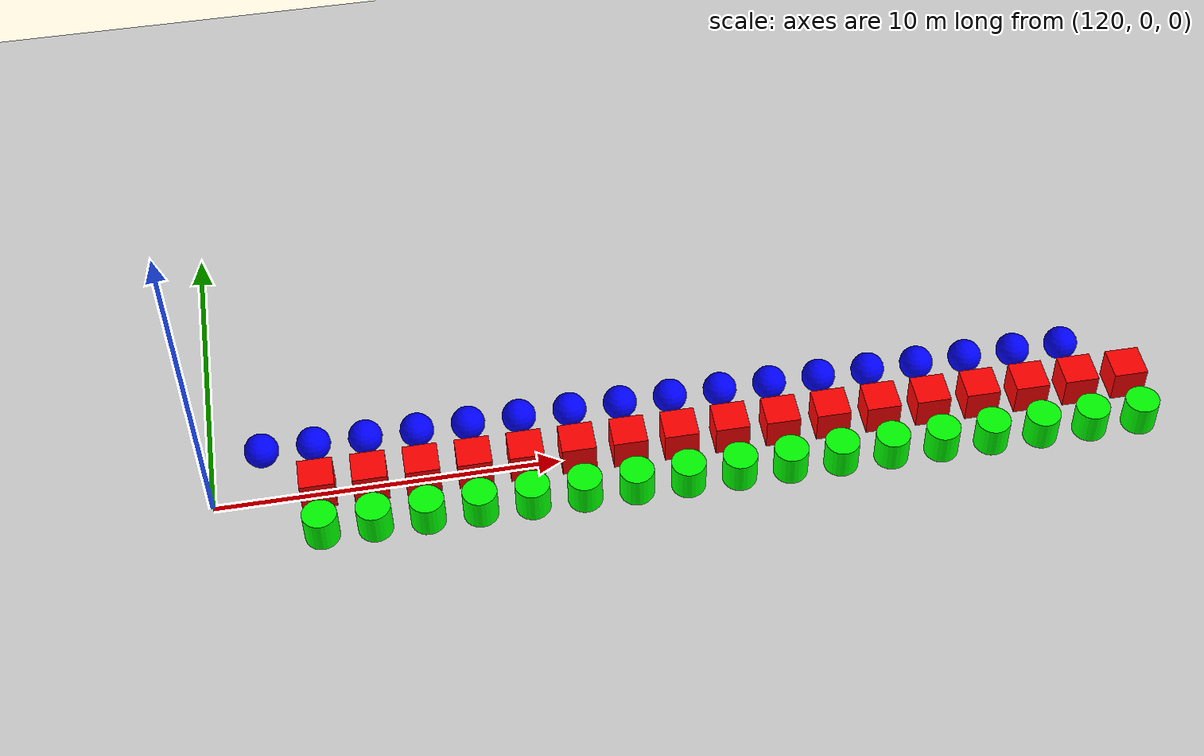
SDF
<sdf version="1.6">
 <world name="shapes">
  <model name="ground_plane">
   <static>true</static>
   <link name="link">
    <collision name="collision">
     <geometry><plane><normal>0 0 1</normal><size>100 100</size></plane></geometry>
    </collision>
    <visual name="visual">
     <geometry><plane><normal>0 0 1</normal><size>100 100</size></plane></geometry>
     <material>
      <ambient>0.8 0.8 0.8 1</ambient>
      <diffuse>0.8 0.8 0.8 1</diffuse>
      <specular>0.8 0.8 0.8 1</specular>
     </material>
    </visual>
   </link>
  </model>
  <model name="sphere_581">
   <static>true</static>
   <pose>121.5 1.5 0.5 0 0 0</pose>
   <link name="sphere_link">
    <inertial>
     <inertia><ixx>3</ixx><ixy>0</ixy><ixz>0</ixz><iyy>3</iyy><iyz>0</iyz><izz>3</izz></inertia>
     <mass>3.0</mass>
    </inertial>
    <collision name="sphere_collision"><geometry><sphere><radius>0.5</radius></sphere></geometry></collision>
    <visual name="sphere_visual">
     <geometry><sphere><radius>0.5</radius></sphere></geometry>
     <material><ambient>0 0 1 1</ambient><diffuse>0 0 1 1</diffuse><specular>0 0 1 1</specular></material>
    </visual>
   </link>
  </model>
  <model name="box_582">
   <static>true</static>
   <pose>123.0 0 0.5 0 0 0</pose>
   <link name="box_link">
    <inertial>
     <inertia><ixx>1</ixx><ixy>0</ixy><ixz>0</ixz><iyy>1</iyy><iyz>0</iyz><izz>1</izz></inertia>
     <mass>1.0</mass>
    </inertial>
    <collision name="box_collision"><geometry><box><size>1 1 1</size></box></geometry></collision>
    <visual name="box_visual">
     <geometry><box><size>1 1 1</size></box></geometry>
     <material><ambient>1 0 0 1</ambient><diffuse>1 0 0 1</diffuse><specular>1 0 0 1</specular></material>
    </visual>
   </link>
  </model>
  <model name="cylinder_582">
   <static>true</static>
   <pose>123.0 -1.5 0.5 0 0 0</pose>
   <link name="cylinder_link">
    <inertial>
     <inertia><ixx>2</ixx><ixy>0</ixy><ixz>0</ixz><iyy>2</iyy><iyz>0</iyz><izz>2</izz></inertia>
     <mass>2.0</mass>
    </inertial>
    <collision name="cylinder_collision">
     <geometry><cylinder><radius>0.5</radius><length>1.0</length></cylinder></geometry>
    </collision>
    <visual name="cylinder_visual">
     <geometry><cylinder><radius>0.5</radius><length>1.0</length></cylinder></geometry>
     <material><ambient>0 1 0 1</ambient><diffuse>0 1 0 1</diffuse><specular>0 1 0 1</specular></material>
    </visual>
   </link>
  </model>
  <model name="sphere_582">
   <static>true</static>
   <pose>123.0 1.5 0.5 0 0 0</pose>
   <link name="sphere_link">
    <inertial>
     <inertia><ixx>3</ixx><ixy>0</ixy><ixz>0</ixz><iyy>3</iyy><iyz>0</iyz><izz>3</izz></inertia>
     <mass>3.0</mass>
    </inertial>
    <collision name="sphere_collision"><geometry><sphere><radius>0.5</radius></sphere></geometry></collision>
    <visual name="sphere_visual">
     <geometry><sphere><radius>0.5</radius></sphere></geometry>
     <material><ambient>0 0 1 1</ambient><diffuse>0 0 1 1</diffuse><specular>0 0 1 1</specular></material>
    </visual>
   </link>
  </model>
  <model name="box_583">
   <static>true</static>
   <pose>124.5 0 0.5 0 0 0</pose>
   <link name="box_link">
    <inertial>
     <inertia><ixx>1</ixx><ixy>0</ixy><ixz>0</ixz><iyy>1</iyy><iyz>0</iyz><izz>1</izz></inertia>
     <mass>1.0</mass>
    </inertial>
    <collision name="box_collision"><geometry><box><size>1 1 1</size></box></geometry></collision>
    <visual name="box_visual">
     <geometry><box><size>1 1 1</size></box></geometry>
     <material><ambient>1 0 0 1</ambient><diffuse>1 0 0 1</diffuse><specular>1 0 0 1</specular></material>
    </visual>
   </link>
  </model>
  <model name="cylinder_583">
   <static>true</static>
   <pose>124.5 -1.5 0.5 0 0 0</pose>
   <link name="cylinder_link">
    <inertial>
     <inertia><ixx>2</ixx><ixy>0</ixy><ixz>0</ixz><iyy>2</iyy><iyz>0</iyz><izz>2</izz></inertia>
     <mass>2.0</mass>
    </inertial>
    <collision name="cylinder_collision">
     <geometry><cylinder><radius>0.5</radius><length>1.0</length></cylinder></geometry>
    </collision>
    <visual name="cylinder_visual">
     <geometry><cylinder><radius>0.5</radius><length>1.0</length></cylinder></geometry>
     <material><ambient>0 1 0 1</ambient><diffuse>0 1 0 1</diffuse><specular>0 1 0 1</specular></material>
    </visual>
   </link>
  </model>
  <model name="sphere_583">
   <static>true</static>
   <pose>124.5 1.5 0.5 0 0 0</pose>
   <link name="sphere_link">
    <inertial>
     <inertia><ixx>3</ixx><ixy>0</ixy><ixz>0</ixz><iyy>3</iyy><iyz>0</iyz><izz>3</izz></inertia>
     <mass>3.0</mass>
    </inertial>
    <collision name="sphere_collision"><geometry><sphere><radius>0.5</radius></sphere></geometry></collision>
    <visual name="sphere_visual">
     <geometry><sphere><radius>0.5</radius></sphere></geometry>
     <material><ambient>0 0 1 1</ambient><diffuse>0 0 1 1</diffuse><specular>0 0 1 1</specular></material>
    </visual>
   </link>
  </model>
  <model name="box_584">
   <static>true</static>
   <pose>126.0 0 0.5 0 0 0</pose>
   <link name="box_link">
    <inertial>
     <inertia><ixx>1</ixx><ixy>0</ixy><ixz>0</ixz><iyy>1</iyy><iyz>0</iyz><izz>1</izz></inertia>
     <mass>1.0</mass>
    </inertial>
    <collision name="box_collision"><geometry><box><size>1 1 1</size></box></geometry></collision>
    <visual name="box_visual">
     <geometry><box><size>1 1 1</size></box></geometry>
     <material><ambient>1 0 0 1</ambient><diffuse>1 0 0 1</diffuse><specular>1 0 0 1</specular></material>
    </visual>
   </link>
  </model>
  <model name="cylinder_584">
   <static>true</static>
   <pose>126.0 -1.5 0.5 0 0 0</pose>
   <link name="cylinder_link">
    <inertial>
     <inertia><ixx>2</ixx><ixy>0</ixy><ixz>0</ixz><iyy>2</iyy><iyz>0</iyz><izz>2</izz></inertia>
     <mass>2.0</mass>
    </inertial>
    <collision name="cylinder_collision">
     <geometry><cylinder><radius>0.5</radius><length>1.0</length></cylinder></geometry>
    </collision>
    <visual name="cylinder_visual">
     <geometry><cylinder><radius>0.5</radius><length>1.0</length></cylinder></geometry>
     <material><ambient>0 1 0 1</ambient><diffuse>0 1 0 1</diffuse><specular>0 1 0 1</specular></material>
    </visual>
   </link>
  </model>
  <model name="sphere_584">
   <static>true</static>
   <pose>126.0 1.5 0.5 0 0 0</pose>
   <link name="sphere_link">
    <inertial>
     <inertia><ixx>3</ixx><ixy>0</ixy><ixz>0</ixz><iyy>3</iyy><iyz>0</iyz><izz>3</izz></inertia>
     <mass>3.0</mass>
    </inertial>
    <collision name="sphere_collision"><geometry><sphere><radius>0.5</radius></sphere></geometry></collision>
    <visual name="sphere_visual">
     <geometry><sphere><radius>0.5</radius></sphere></geometry>
     <material><ambient>0 0 1 1</ambient><diffuse>0 0 1 1</diffuse><specular>0 0 1 1</specular></material>
    </visual>
   </link>
  </model>
  <model name="box_585">
   <static>true</static>
   <pose>127.5 0 0.5 0 0 0</pose>
   <link name="box_link">
    <inertial>
     <inertia><ixx>1</ixx><ixy>0</ixy><ixz>0</ixz><iyy>1</iyy><iyz>0</iyz><izz>1</izz></inertia>
     <mass>1.0</mass>
    </inertial>
    <collision name="box_collision"><geometry><box><size>1 1 1</size></box></geometry></collision>
    <visual name="box_visual">
     <geometry><box><size>1 1 1</size></box></geometry>
     <material><ambient>1 0 0 1</ambient><diffuse>1 0 0 1</diffuse><specular>1 0 0 1</specular></material>
    </visual>
   </link>
  </model>
  <model name="cylinder_585">
   <static>true</static>
   <pose>127.5 -1.5 0.5 0 0 0</pose>
   <link name="cylinder_link">
    <inertial>
     <inertia><ixx>2</ixx><ixy>0</ixy><ixz>0</ixz><iyy>2</iyy><iyz>0</iyz><izz>2</izz></inertia>
     <mass>2.0</mass>
    </inertial>
    <collision name="cylinder_collision">
     <geometry><cylinder><radius>0.5</radius><length>1.0</length></cylinder></geometry>
    </collision>
    <visual name="cylinder_visual">
     <geometry><cylinder><radius>0.5</radius><length>1.0</length></cylinder></geometry>
     <material><ambient>0 1 0 1</ambient><diffuse>0 1 0 1</diffuse><specular>0 1 0 1</specular></material>
    </visual>
   </link>
  </model>
  <model name="sphere_585">
   <static>true</static>
   <pose>127.5 1.5 0.5 0 0 0</pose>
   <link name="sphere_link">
    <inertial>
     <inertia><ixx>3</ixx><ixy>0</ixy><ixz>0</ixz><iyy>3</iyy><iyz>0</iyz><izz>3</izz></inertia>
     <mass>3.0</mass>
    </inertial>
    <collision name="sphere_collision"><geometry><sphere><radius>0.5</radius></sphere></geometry></collision>
    <visual name="sphere_visual">
     <geometry><sphere><radius>0.5</radius></sphere></geometry>
     <material><ambient>0 0 1 1</ambient><diffuse>0 0 1 1</diffuse><specular>0 0 1 1</specular></material>
    </visual>
   </link>
  </model>
  <model name="box_586">
   <static>true</static>
   <pose>129.0 0 0.5 0 0 0</pose>
   <link name="box_link">
    <inertial>
     <inertia><ixx>1</ixx><ixy>0</ixy><ixz>0</ixz><iyy>1</iyy><iyz>0</iyz><izz>1</izz></inertia>
     <mass>1.0</mass>
    </inertial>
    <collision name="box_collision"><geometry><box><size>1 1 1</size></box></geometry></collision>
    <visual name="box_visual">
     <geometry><box><size>1 1 1</size></box></geometry>
     <material><ambient>1 0 0 1</ambient><diffuse>1 0 0 1</diffuse><specular>1 0 0 1</specular></material>
    </visual>
   </link>
  </model>
  <model name="cylinder_586">
   <static>true</static>
   <pose>129.0 -1.5 0.5 0 0 0</pose>
   <link name="cylinder_link">
    <inertial>
     <inertia><ixx>2</ixx><ixy>0</ixy><ixz>0</ixz><iyy>2</iyy><iyz>0</iyz><izz>2</izz></inertia>
     <mass>2.0</mass>
    </inertial>
    <collision name="cylinder_collision">
     <geometry><cylinder><radius>0.5</radius><length>1.0</length></cylinder></geometry>
    </collision>
    <visual name="cylinder_visual">
     <geometry><cylinder><radius>0.5</radius><length>1.0</length></cylinder></geometry>
     <material><ambient>0 1 0 1</ambient><diffuse>0 1 0 1</diffuse><specular>0 1 0 1</specular></material>
    </visual>
   </link>
  </model>
  <model name="sphere_586">
   <static>true</static>
   <pose>129.0 1.5 0.5 0 0 0</pose>
   <link name="sphere_link">
    <inertial>
     <inertia><ixx>3</ixx><ixy>0</ixy><ixz>0</ixz><iyy>3</iyy><iyz>0</iyz><izz>3</izz></inertia>
     <mass>3.0</mass>
    </inertial>
    <collision name="sphere_collision"><geometry><sphere><radius>0.5</radius></sphere></geometry></collision>
    <visual name="sphere_visual">
     <geometry><sphere><radius>0.5</radius></sphere></geometry>
     <material><ambient>0 0 1 1</ambient><diffuse>0 0 1 1</diffuse><specular>0 0 1 1</specular></material>
    </visual>
   </link>
  </model>
  <model name="box_587">
   <static>true</static>
   <pose>130.5 0 0.5 0 0 0</pose>
   <link name="box_link">
    <inertial>
     <inertia><ixx>1</ixx><ixy>0</ixy><ixz>0</ixz><iyy>1</iyy><iyz>0</iyz><izz>1</izz></inertia>
     <mass>1.0</mass>
    </inertial>
    <collision name="box_collision"><geometry><box><size>1 1 1</size></box></geometry></collision>
    <visual name="box_visual">
     <geometry><box><size>1 1 1</size></box></geometry>
     <material><ambient>1 0 0 1</ambient><diffuse>1 0 0 1</diffuse><specular>1 0 0 1</specular></material>
    </visual>
   </link>
  </model>
  <model name="cylinder_587">
   <static>true</static>
   <pose>130.5 -1.5 0.5 0 0 0</pose>
   <link name="cylinder_link">
    <inertial>
     <inertia><ixx>2</ixx><ixy>0</ixy><ixz>0</ixz><iyy>2</iyy><iyz>0</iyz><izz>2</izz></inertia>
     <mass>2.0</mass>
    </inertial>
    <collision name="cylinder_collision">
     <geometry><cylinder><radius>0.5</radius><length>1.0</length></cylinder></geometry>
    </collision>
    <visual name="cylinder_visual">
     <geometry><cylinder><radius>0.5</radius><length>1.0</length></cylinder></geometry>
     <material><ambient>0 1 0 1</ambient><diffuse>0 1 0 1</diffuse><specular>0 1 0 1</specular></material>
    </visual>
   </link>
  </model>
  <model name="sphere_587">
   <static>true</static>
   <pose>130.5 1.5 0.5 0 0 0</pose>
   <link name="sphere_link">
    <inertial>
     <inertia><ixx>3</ixx><ixy>0</ixy><ixz>0</ixz><iyy>3</iyy><iyz>0</iyz><izz>3</izz></inertia>
     <mass>3.0</mass>
    </inertial>
    <collision name="sphere_collision"><geometry><sphere><radius>0.5</radius></sphere></geometry></collision>
    <visual name="sphere_visual">
     <geometry><sphere><radius>0.5</radius></sphere></geometry>
     <material><ambient>0 0 1 1</ambient><diffuse>0 0 1 1</diffuse><specular>0 0 1 1</specular></material>
    </visual>
   </link>
  </model>
  <model name="box_588">
   <static>true</static>
   <pose>132.0 0 0.5 0 0 0</pose>
   <link name="box_link">
    <inertial>
     <inertia><ixx>1</ixx><ixy>0</ixy><ixz>0</ixz><iyy>1</iyy><iyz>0</iyz><izz>1</izz></inertia>
     <mass>1.0</mass>
    </inertial>
    <collision name="box_collision"><geometry><box><size>1 1 1</size></box></geometry></collision>
    <visual name="box_visual">
     <geometry><box><size>1 1 1</size></box></geometry>
     <material><ambient>1 0 0 1</ambient><diffuse>1 0 0 1</diffuse><specular>1 0 0 1</specular></material>
    </visual>
   </link>
  </model>
  <model name="cylinder_588">
   <static>true</static>
   <pose>132.0 -1.5 0.5 0 0 0</pose>
   <link name="cylinder_link">
    <inertial>
     <inertia><ixx>2</ixx><ixy>0</ixy><ixz>0</ixz><iyy>2</iyy><iyz>0</iyz><izz>2</izz></inertia>
     <mass>2.0</mass>
    </inertial>
    <collision name="cylinder_collision">
     <geometry><cylinder><radius>0.5</radius><length>1.0</length></cylinder></geometry>
    </collision>
    <visual name="cylinder_visual">
     <geometry><cylinder><radius>0.5</radius><length>1.0</length></cylinder></geometry>
     <material><ambient>0 1 0 1</ambient><diffuse>0 1 0 1</diffuse><specular>0 1 0 1</specular></material>
    </visual>
   </link>
  </model>
  <model name="sphere_588">
   <static>true</static>
   <pose>132.0 1.5 0.5 0 0 0</pose>
   <link name="sphere_link">
    <inertial>
     <inertia><ixx>3</ixx><ixy>0</ixy><ixz>0</ixz><iyy>3</iyy><iyz>0</iyz><izz>3</izz></inertia>
     <mass>3.0</mass>
    </inertial>
    <collision name="sphere_collision"><geometry><sphere><radius>0.5</radius></sphere></geometry></collision>
    <visual name="sphere_visual">
     <geometry><sphere><radius>0.5</radius></sphere></geometry>
     <material><ambient>0 0 1 1</ambient><diffuse>0 0 1 1</diffuse><specular>0 0 1 1</specular></material>
    </visual>
   </link>
  </model>
  <model name="box_589">
   <static>true</static>
   <pose>133.5 0 0.5 0 0 0</pose>
   <link name="box_link">
    <inertial>
     <inertia><ixx>1</ixx><ixy>0</ixy><ixz>0</ixz><iyy>1</iyy><iyz>0</iyz><izz>1</izz></inertia>
     <mass>1.0</mass>
    </inertial>
    <collision name="box_collision"><geometry><box><size>1 1 1</size></box></geometry></collision>
    <visual name="box_visual">
     <geometry><box><size>1 1 1</size></box></geometry>
     <material><ambient>1 0 0 1</ambient><diffuse>1 0 0 1</diffuse><specular>1 0 0 1</specular></material>
    </visual>
   </link>
  </model>
  <model name="cylinder_589">
   <static>true</static>
   <pose>133.5 -1.5 0.5 0 0 0</pose>
   <link name="cylinder_link">
    <inertial>
     <inertia><ixx>2</ixx><ixy>0</ixy><ixz>0</ixz><iyy>2</iyy><iyz>0</iyz><izz>2</izz></inertia>
     <mass>2.0</mass>
    </inertial>
    <collision name="cylinder_collision">
     <geometry><cylinder><radius>0.5</radius><length>1.0</length></cylinder></geometry>
    </collision>
    <visual name="cylinder_visual">
     <geometry><cylinder><radius>0.5</radius><length>1.0</length></cylinder></geometry>
     <material><ambient>0 1 0 1</ambient><diffuse>0 1 0 1</diffuse><specular>0 1 0 1</specular></material>
    </visual>
   </link>
  </model>
  <model name="sphere_589">
   <static>true</static>
   <pose>133.5 1.5 0.5 0 0 0</pose>
   <link name="sphere_link">
    <inertial>
     <inertia><ixx>3</ixx><ixy>0</ixy><ixz>0</ixz><iyy>3</iyy><iyz>0</iyz><izz>3</izz></inertia>
     <mass>3.0</mass>
    </inertial>
    <collision name="sphere_collision"><geometry><sphere><radius>0.5</radius></sphere></geometry></collision>
    <visual name="sphere_visual">
     <geometry><sphere><radius>0.5</radius></sphere></geometry>
     <material><ambient>0 0 1 1</ambient><diffuse>0 0 1 1</diffuse><specular>0 0 1 1</specular></material>
    </visual>
   </link>
  </model>
  <model name="box_590">
   <static>true</static>
   <pose>135.0 0 0.5 0 0 0</pose>
   <link name="box_link">
    <inertial>
     <inertia><ixx>1</ixx><ixy>0</ixy><ixz>0</ixz><iyy>1</iyy><iyz>0</iyz><izz>1</izz></inertia>
     <mass>1.0</mass>
    </inertial>
    <collision name="box_collision"><geometry><box><size>1 1 1</size></box></geometry></collision>
    <visual name="box_visual">
     <geometry><box><size>1 1 1</size></box></geometry>
     <material><ambient>1 0 0 1</ambient><diffuse>1 0 0 1</diffuse><specular>1 0 0 1</specular></material>
    </visual>
   </link>
  </model>
  <model name="cylinder_590">
   <static>true</static>
   <pose>135.0 -1.5 0.5 0 0 0</pose>
   <link name="cylinder_link">
    <inertial>
     <inertia><ixx>2</ixx><ixy>0</ixy><ixz>0</ixz><iyy>2</iyy><iyz>0</iyz><izz>2</izz></inertia>
     <mass>2.0</mass>
    </inertial>
    <collision name="cylinder_collision">
     <geometry><cylinder><radius>0.5</radius><length>1.0</length></cylinder></geometry>
    </collision>
    <visual name="cylinder_visual">
     <geometry><cylinder><radius>0.5</radius><length>1.0</length></cylinder></geometry>
     <material><ambient>0 1 0 1</ambient><diffuse>0 1 0 1</diffuse><specular>0 1 0 1</specular></material>
    </visual>
   </link>
  </model>
  <model name="sphere_590">
   <static>true</static>
   <pose>135.0 1.5 0.5 0 0 0</pose>
   <link name="sphere_link">
    <inertial>
     <inertia><ixx>3</ixx><ixy>0</ixy><ixz>0</ixz><iyy>3</iyy><iyz>0</iyz><izz>3</izz></inertia>
     <mass>3.0</mass>
    </inertial>
    <collision name="sphere_collision"><geometry><sphere><radius>0.5</radius></sphere></geometry></collision>
    <visual name="sphere_visual">
     <geometry><sphere><radius>0.5</radius></sphere></geometry>
     <material><ambient>0 0 1 1</ambient><diffuse>0 0 1 1</diffuse><specular>0 0 1 1</specular></material>
    </visual>
   </link>
  </model>
  <model name="box_591">
   <static>true</static>
   <pose>136.5 0 0.5 0 0 0</pose>
   <link name="box_link">
    <inertial>
     <inertia><ixx>1</ixx><ixy>0</ixy><ixz>0</ixz><iyy>1</iyy><iyz>0</iyz><izz>1</izz></inertia>
     <mass>1.0</mass>
    </inertial>
    <collision name="box_collision"><geometry><box><size>1 1 1</size></box></geometry></collision>
    <visual name="box_visual">
     <geometry><box><size>1 1 1</size></box></geometry>
     <material><ambient>1 0 0 1</ambient><diffuse>1 0 0 1</diffuse><specular>1 0 0 1</specular></material>
    </visual>
   </link>
  </model>
  <model name="cylinder_591">
   <static>true</static>
   <pose>136.5 -1.5 0.5 0 0 0</pose>
   <link name="cylinder_link">
    <inertial>
     <inertia><ixx>2</ixx><ixy>0</ixy><ixz>0</ixz><iyy>2</iyy><iyz>0</iyz><izz>2</izz></inertia>
     <mass>2.0</mass>
    </inertial>
    <collision name="cylinder_collision">
     <geometry><cylinder><radius>0.5</radius><length>1.0</length></cylinder></geometry>
    </collision>
    <visual name="cylinder_visual">
     <geometry><cylinder><radius>0.5</radius><length>1.0</length></cylinder></geometry>
     <material><ambient>0 1 0 1</ambient><diffuse>0 1 0 1</diffuse><specular>0 1 0 1</specular></material>
    </visual>
   </link>
  </model>
  <model name="sphere_591">
   <static>true</static>
   <pose>136.5 1.5 0.5 0 0 0</pose>
   <link name="sphere_link">
    <inertial>
     <inertia><ixx>3</ixx><ixy>0</ixy><ixz>0</ixz><iyy>3</iyy><iyz>0</iyz><izz>3</izz></inertia>
     <mass>3.0</mass>
    </inertial>
    <collision name="sphere_collision"><geometry><sphere><radius>0.5</radius></sphere></geometry></collision>
    <visual name="sphere_visual">
     <geometry><sphere><radius>0.5</radius></sphere></geometry>
     <material><ambient>0 0 1 1</ambient><diffuse>0 0 1 1</diffuse><specular>0 0 1 1</specular></material>
    </visual>
   </link>
  </model>
  <model name="box_592">
   <static>true</static>
   <pose>138.0 0 0.5 0 0 0</pose>
   <link name="box_link">
    <inertial>
     <inertia><ixx>1</ixx><ixy>0</ixy><ixz>0</ixz><iyy>1</iyy><iyz>0</iyz><izz>1</izz></inertia>
     <mass>1.0</mass>
    </inertial>
    <collision name="box_collision"><geometry><box><size>1 1 1</size></box></geometry></collision>
    <visual name="box_visual">
     <geometry><box><size>1 1 1</size></box></geometry>
     <material><ambient>1 0 0 1</ambient><diffuse>1 0 0 1</diffuse><specular>1 0 0 1</specular></material>
    </visual>
   </link>
  </model>
  <model name="cylinder_592">
   <static>true</static>
   <pose>138.0 -1.5 0.5 0 0 0</pose>
   <link name="cylinder_link">
    <inertial>
     <inertia><ixx>2</ixx><ixy>0</ixy><ixz>0</ixz><iyy>2</iyy><iyz>0</iyz><izz>2</izz></inertia>
     <mass>2.0</mass>
    </inertial>
    <collision name="cylinder_collision">
     <geometry><cylinder><radius>0.5</radius><length>1.0</length></cylinder></geometry>
    </collision>
    <visual name="cylinder_visual">
     <geometry><cylinder><radius>0.5</radius><length>1.0</length></cylinder></geometry>
     <material><ambient>0 1 0 1</ambient><diffuse>0 1 0 1</diffuse><specular>0 1 0 1</specular></material>
    </visual>
   </link>
  </model>
  <model name="sphere_592">
   <static>true</static>
   <pose>138.0 1.5 0.5 0 0 0</pose>
   <link name="sphere_link">
    <inertial>
     <inertia><ixx>3</ixx><ixy>0</ixy><ixz>0</ixz><iyy>3</iyy><iyz>0</iyz><izz>3</izz></inertia>
     <mass>3.0</mass>
    </inertial>
    <collision name="sphere_collision"><geometry><sphere><radius>0.5</radius></sphere></geometry></collision>
    <visual name="sphere_visual">
     <geometry><sphere><radius>0.5</radius></sphere></geometry>
     <material><ambient>0 0 1 1</ambient><diffuse>0 0 1 1</diffuse><specular>0 0 1 1</specular></material>
    </visual>
   </link>
  </model>
  <model name="box_593">
   <static>true</static>
   <pose>139.5 0 0.5 0 0 0</pose>
   <link name="box_link">
    <inertial>
     <inertia><ixx>1</ixx><ixy>0</ixy><ixz>0</ixz><iyy>1</iyy><iyz>0</iyz><izz>1</izz></inertia>
     <mass>1.0</mass>
    </inertial>
    <collision name="box_collision"><geometry><box><size>1 1 1</size></box></geometry></collision>
    <visual name="box_visual">
     <geometry><box><size>1 1 1</size></box></geometry>
     <material><ambient>1 0 0 1</ambient><diffuse>1 0 0 1</diffuse><specular>1 0 0 1</specular></material>
    </visual>
   </link>
  </model>
  <model name="cylinder_593">
   <static>true</static>
   <pose>139.5 -1.5 0.5 0 0 0</pose>
   <link name="cylinder_link">
    <inertial>
     <inertia><ixx>2</ixx><ixy>0</ixy><ixz>0</ixz><iyy>2</iyy><iyz>0</iyz><izz>2</izz></inertia>
     <mass>2.0</mass>
    </inertial>
    <collision name="cylinder_collision">
     <geometry><cylinder><radius>0.5</radius><length>1.0</length></cylinder></geometry>
    </collision>
    <visual name="cylinder_visual">
     <geometry><cylinder><radius>0.5</radius><length>1.0</length></cylinder></geometry>
     <material><ambient>0 1 0 1</ambient><diffuse>0 1 0 1</diffuse><specular>0 1 0 1</specular></material>
    </visual>
   </link>
  </model>
  <model name="sphere_593">
   <static>true</static>
   <pose>139.5 1.5 0.5 0 0 0</pose>
   <link name="sphere_link">
    <inertial>
     <inertia><ixx>3</ixx><ixy>0</ixy><ixz>0</ixz><iyy>3</iyy><iyz>0</iyz><izz>3</izz></inertia>
     <mass>3.0</mass>
    </inertial>
    <collision name="sphere_collision"><geometry><sphere><radius>0.5</radius></sphere></geometry></collision>
    <visual name="sphere_visual">
     <geometry><sphere><radius>0.5</radius></sphere></geometry>
     <material><ambient>0 0 1 1</ambient><diffuse>0 0 1 1</diffuse><specular>0 0 1 1</specular></material>
    </visual>
   </link>
  </model>
  <model name="box_594">
   <static>true</static>
   <pose>141.0 0 0.5 0 0 0</pose>
   <link name="box_link">
    <inertial>
     <inertia><ixx>1</ixx><ixy>0</ixy><ixz>0</ixz><iyy>1</iyy><iyz>0</iyz><izz>1</izz></inertia>
     <mass>1.0</mass>
    </inertial>
    <collision name="box_collision"><geometry><box><size>1 1 1</size></box></geometry></collision>
    <visual name="box_visual">
     <geometry><box><size>1 1 1</size></box></geometry>
     <material><ambient>1 0 0 1</ambient><diffuse>1 0 0 1</diffuse><specular>1 0 0 1</specular></material>
    </visual>
   </link>
  </model>
  <model name="cylinder_594">
   <static>true</static>
   <pose>141.0 -1.5 0.5 0 0 0</pose>
   <link name="cylinder_link">
    <inertial>
     <inertia><ixx>2</ixx><ixy>0</ixy><ixz>0</ixz><iyy>2</iyy><iyz>0</iyz><izz>2</izz></inertia>
     <mass>2.0</mass>
    </inertial>
    <collision name="cylinder_collision">
     <geometry><cylinder><radius>0.5</radius><length>1.0</length></cylinder></geometry>
    </collision>
    <visual name="cylinder_visual">
     <geometry><cylinder><radius>0.5</radius><length>1.0</length></cylinder></geometry>
     <material><ambient>0 1 0 1</ambient><diffuse>0 1 0 1</diffuse><specular>0 1 0 1</specular></material>
    </visual>
   </link>
  </model>
  <model name="sphere_594">
   <static>true</static>
   <pose>141.0 1.5 0.5 0 0 0</pose>
   <link name="sphere_link">
    <inertial>
     <inertia><ixx>3</ixx><ixy>0</ixy><ixz>0</ixz><iyy>3</iyy><iyz>0</iyz><izz>3</izz></inertia>
     <mass>3.0</mass>
    </inertial>
    <collision name="sphere_collision"><geometry><sphere><radius>0.5</radius></sphere></geometry></collision>
    <visual name="sphere_visual">
     <geometry><sphere><radius>0.5</radius></sphere></geometry>
     <material><ambient>0 0 1 1</ambient><diffuse>0 0 1 1</diffuse><specular>0 0 1 1</specular></material>
    </visual>
   </link>
  </model>
  <model name="box_595">
   <static>true</static>
   <pose>142.5 0 0.5 0 0 0</pose>
   <link name="box_link">
    <inertial>
     <inertia><ixx>1</ixx><ixy>0</ixy><ixz>0</ixz><iyy>1</iyy><iyz>0</iyz><izz>1</izz></inertia>
     <mass>1.0</mass>
    </inertial>
    <collision name="box_collision"><geometry><box><size>1 1 1</size></box></geometry></collision>
    <visual name="box_visual">
     <geometry><box><size>1 1 1</size></box></geometry>
     <material><ambient>1 0 0 1</ambient><diffuse>1 0 0 1</diffuse><specular>1 0 0 1</specular></material>
    </visual>
   </link>
  </model>
  <model name="cylinder_595">
   <static>true</static>
   <pose>142.5 -1.5 0.5 0 0 0</pose>
   <link name="cylinder_link">
    <inertial>
     <inertia><ixx>2</ixx><ixy>0</ixy><ixz>0</ixz><iyy>2</iyy><iyz>0</iyz><izz>2</izz></inertia>
     <mass>2.0</mass>
    </inertial>
    <collision name="cylinder_collision">
     <geometry><cylinder><radius>0.5</radius><length>1.0</length></cylinder></geometry>
    </collision>
    <visual name="cylinder_visual">
     <geometry><cylinder><radius>0.5</radius><length>1.0</length></cylinder></geometry>
     <material><ambient>0 1 0 1</ambient><diffuse>0 1 0 1</diffuse><specular>0 1 0 1</specular></material>
    </visual>
   </link>
  </model>
  <model name="sphere_595">
   <static>true</static>
   <pose>142.5 1.5 0.5 0 0 0</pose>
   <link name="sphere_link">
    <inertial>
     <inertia><ixx>3</ixx><ixy>0</ixy><ixz>0</ixz><iyy>3</iyy><iyz>0</iyz><izz>3</izz></inertia>
     <mass>3.0</mass>
    </inertial>
    <collision name="sphere_collision"><geometry><sphere><radius>0.5</radius></sphere></geometry></collision>
    <visual name="sphere_visual">
     <geometry><sphere><radius>0.5</radius></sphere></geometry>
     <material><ambient>0 0 1 1</ambient><diffuse>0 0 1 1</diffuse><specular>0 0 1 1</specular></material>
    </visual>
   </link>
  </model>
  <model name="box_596">
   <static>true</static>
   <pose>144.0 0 0.5 0 0 0</pose>
   <link name="box_link">
    <inertial>
     <inertia><ixx>1</ixx><ixy>0</ixy><ixz>0</ixz><iyy>1</iyy><iyz>0</iyz><izz>1</izz></inertia>
     <mass>1.0</mass>
    </inertial>
    <collision name="box_collision"><geometry><box><size>1 1 1</size></box></geometry></collision>
    <visual name="box_visual">
     <geometry><box><size>1 1 1</size></box></geometry>
     <material><ambient>1 0 0 1</ambient><diffuse>1 0 0 1</diffuse><specular>1 0 0 1</specular></material>
    </visual>
   </link>
  </model>
  <model name="cylinder_596">
   <static>true</static>
   <pose>144.0 -1.5 0.5 0 0 0</pose>
   <link name="cylinder_link">
    <inertial>
     <inertia><ixx>2</ixx><ixy>0</ixy><ixz>0</ixz><iyy>2</iyy><iyz>0</iyz><izz>2</izz></inertia>
     <mass>2.0</mass>
    </inertial>
    <collision name="cylinder_collision">
     <geometry><cylinder><radius>0.5</radius><length>1.0</length></cylinder></geometry>
    </collision>
    <visual name="cylinder_visual">
     <geometry><cylinder><radius>0.5</radius><length>1.0</length></cylinder></geometry>
     <material><ambient>0 1 0 1</ambient><diffuse>0 1 0 1</diffuse><specular>0 1 0 1</specular></material>
    </visual>
   </link>
  </model>
  <model name="sphere_596">
   <static>true</static>
   <pose>144.0 1.5 0.5 0 0 0</pose>
   <link name="sphere_link">
    <inertial>
     <inertia><ixx>3</ixx><ixy>0</ixy><ixz>0</ixz><iyy>3</iyy><iyz>0</iyz><izz>3</izz></inertia>
     <mass>3.0</mass>
    </inertial>
    <collision name="sphere_collision"><geometry><sphere><radius>0.5</radius></sphere></geometry></collision>
    <visual name="sphere_visual">
     <geometry><sphere><radius>0.5</radius></sphere></geometry>
     <material><ambient>0 0 1 1</ambient><diffuse>0 0 1 1</diffuse><specular>0 0 1 1</specular></material>
    </visual>
   </link>
  </model>
  <model name="box_597">
   <static>true</static>
   <pose>145.5 0 0.5 0 0 0</pose>
   <link name="box_link">
    <inertial>
     <inertia><ixx>1</ixx><ixy>0</ixy><ixz>0</ixz><iyy>1</iyy><iyz>0</iyz><izz>1</izz></inertia>
     <mass>1.0</mass>
    </inertial>
    <collision name="box_collision"><geometry><box><size>1 1 1</size></box></geometry></collision>
    <visual name="box_visual">
     <geometry><box><size>1 1 1</size></box></geometry>
     <material><ambient>1 0 0 1</ambient><diffuse>1 0 0 1</diffuse><specular>1 0 0 1</specular></material>
    </visual>
   </link>
  </model>
  <model name="cylinder_597">
   <static>true</static>
   <pose>145.5 -1.5 0.5 0 0 0</pose>
   <link name="cylinder_link">
    <inertial>
     <inertia><ixx>2</ixx><ixy>0</ixy><ixz>0</ixz><iyy>2</iyy><iyz>0</iyz><izz>2</izz></inertia>
     <mass>2.0</mass>
    </inertial>
    <collision name="cylinder_collision">
     <geometry><cylinder><radius>0.5</radius><length>1.0</length></cylinder></geometry>
    </collision>
    <visual name="cylinder_visual">
     <geometry><cylinder><radius>0.5</radius><length>1.0</length></cylinder></geometry>
     <material><ambient>0 1 0 1</ambient><diffuse>0 1 0 1</diffuse><specular>0 1 0 1</specular></material>
    </visual>
   </link>
  </model>
  <model name="sphere_597">
   <static>true</static>
   <pose>145.5 1.5 0.5 0 0 0</pose>
   <link name="sphere_link">
    <inertial>
     <inertia><ixx>3</ixx><ixy>0</ixy><ixz>0</ixz><iyy>3</iyy><iyz>0</iyz><izz>3</izz></inertia>
     <mass>3.0</mass>
    </inertial>
    <collision name="sphere_collision"><geometry><sphere><radius>0.5</radius></sphere></geometry></collision>
    <visual name="sphere_visual">
     <geometry><sphere><radius>0.5</radius></sphere></geometry>
     <material><ambient>0 0 1 1</ambient><diffuse>0 0 1 1</diffuse><specular>0 0 1 1</specular></material>
    </visual>
   </link>
  </model>
  <model name="box_598">
   <static>true</static>
   <pose>147.0 0 0.5 0 0 0</pose>
   <link name="box_link">
    <inertial>
     <inertia><ixx>1</ixx><ixy>0</ixy><ixz>0</ixz><iyy>1</iyy><iyz>0</iyz><izz>1</izz></inertia>
     <mass>1.0</mass>
    </inertial>
    <collision name="box_collision"><geometry><box><size>1 1 1</size></box></geometry></collision>
    <visual name="box_visual">
     <geometry><box><size>1 1 1</size></box></geometry>
     <material><ambient>1 0 0 1</ambient><diffuse>1 0 0 1</diffuse><specular>1 0 0 1</specular></material>
    </visual>
   </link>
  </model>
  <model name="cylinder_598">
   <static>true</static>
   <pose>147.0 -1.5 0.5 0 0 0</pose>
   <link name="cylinder_link">
    <inertial>
     <inertia><ixx>2</ixx><ixy>0</ixy><ixz>0</ixz><iyy>2</iyy><iyz>0</iyz><izz>2</izz></inertia>
     <mass>2.0</mass>
    </inertial>
    <collision name="cylinder_collision">
     <geometry><cylinder><radius>0.5</radius><length>1.0</length></cylinder></geometry>
    </collision>
    <visual name="cylinder_visual">
     <geometry><cylinder><radius>0.5</radius><length>1.0</length></cylinder></geometry>
     <material><ambient>0 1 0 1</ambient><diffuse>0 1 0 1</diffuse><specular>0 1 0 1</specular></material>
    </visual>
   </link>
  </model>
 </world>
</sdf>
